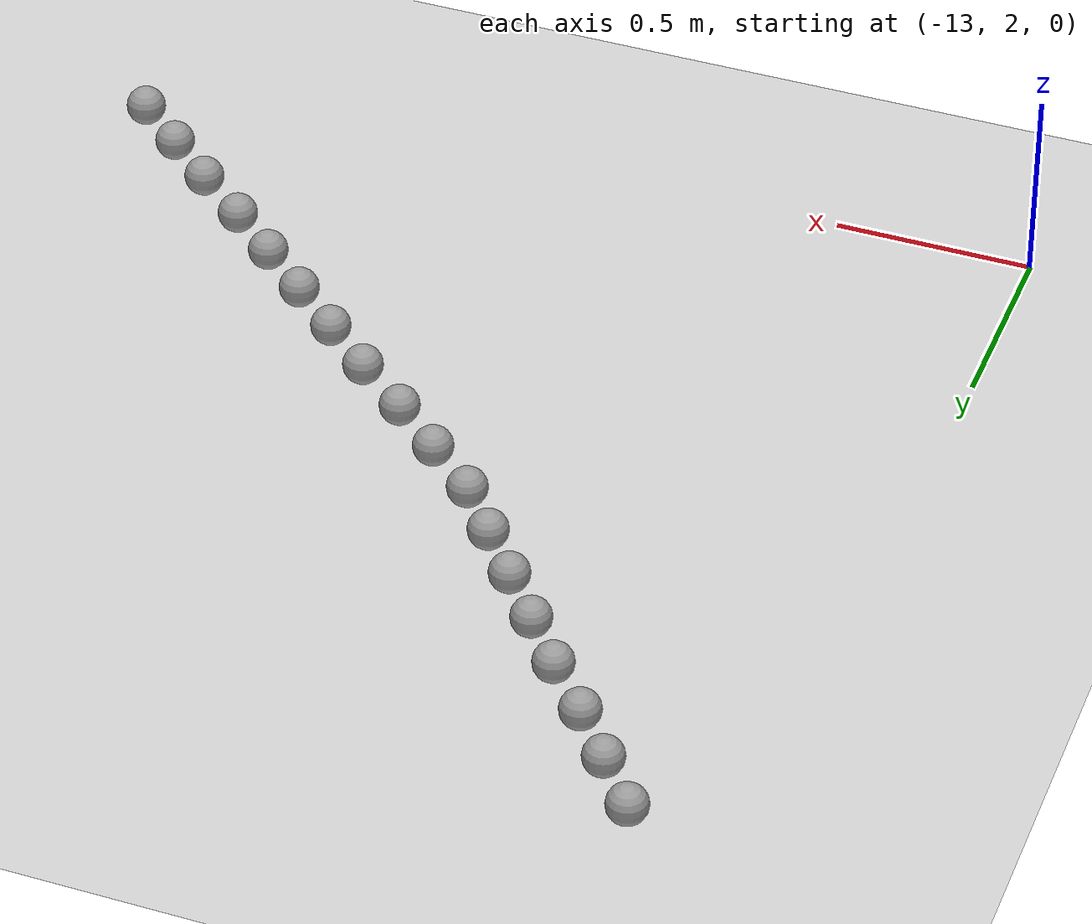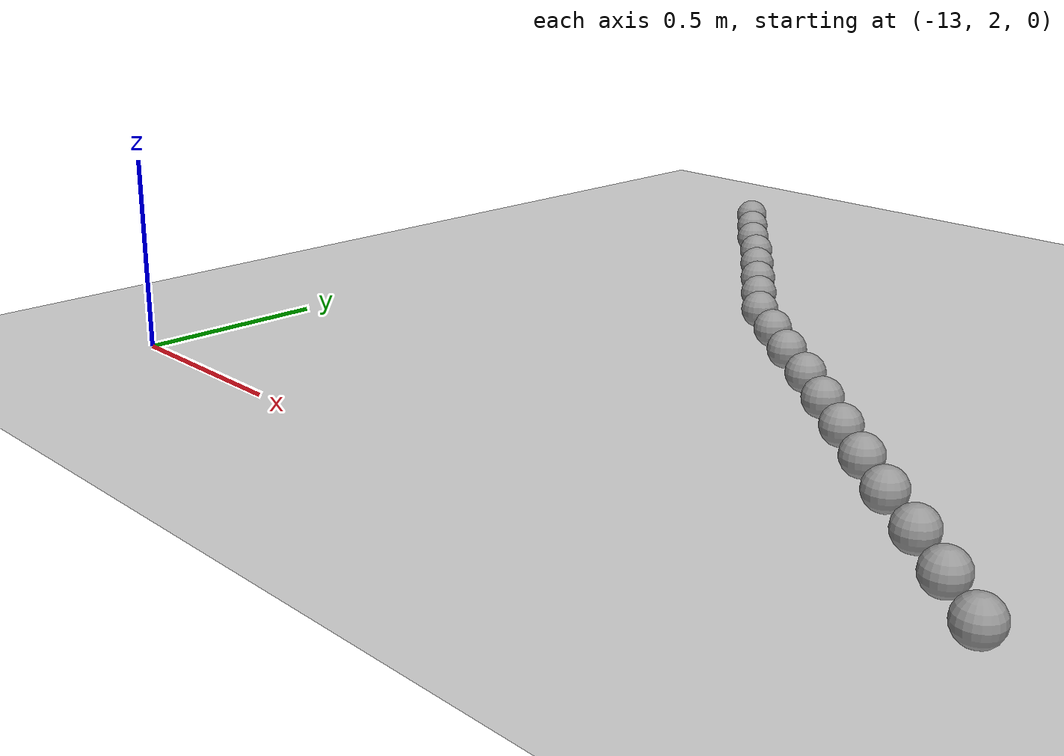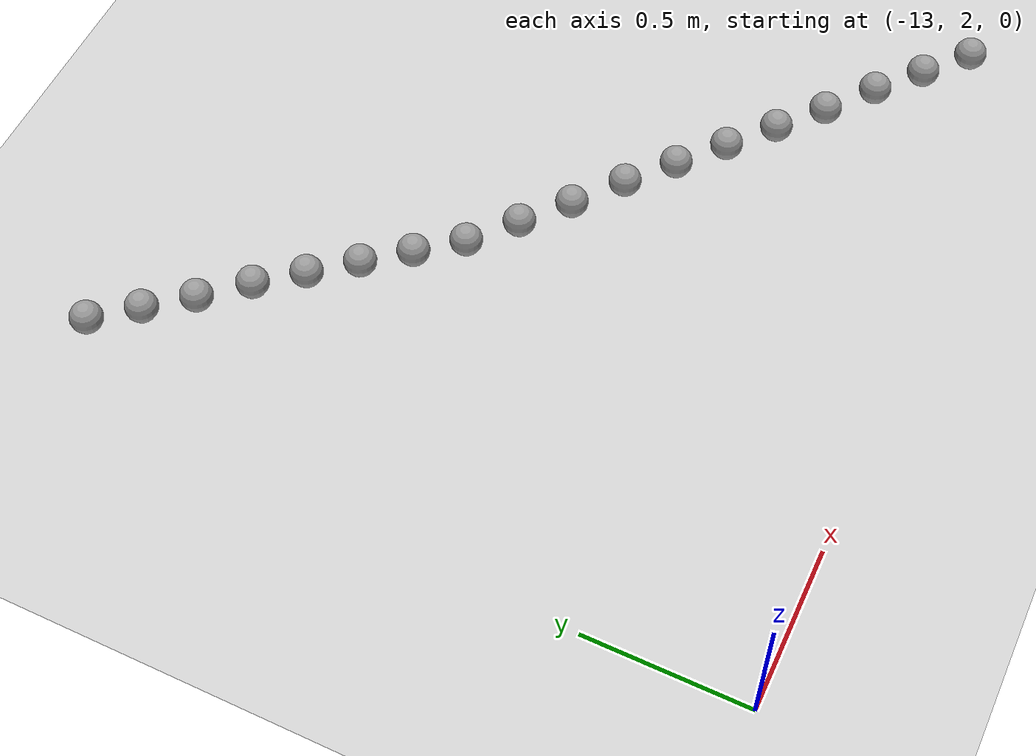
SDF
<sdf version="1.6">
 <world name="default">
  <model name="ground_plane">
   <static>1</static>
   <link name="link">
    <collision name="collision">
     <geometry><plane><normal>0 0 1</normal><size>100 100</size></plane></geometry>
     <surface><friction><ode><mu>100</mu><mu2>50</mu2></ode></friction></surface>
    </collision>
    <visual name="visual">
     <cast_shadows>0</cast_shadows>
     <geometry><plane><normal>0 0 1</normal><size>100 100</size></plane></geometry>
     <material>
      <script><uri>file://media/materials/scripts/gazebo.material</uri><name>Gazebo/Grey</name></script>
     </material>
    </visual>
   </link>
  </model>
  <model name="unit_sphere_0_203">
   <pose>-12.720000 4.195000 0.050000 0 -0 0</pose>
   <link name="link">
    <inertial>
     <mass>1</mass>
     <inertia><ixx>0.1</ixx><ixy>0</ixy><ixz>0</ixz><iyy>0.1</iyy><iyz>0</iyz><izz>0.1</izz></inertia>
    </inertial>
    <collision name="collision"><geometry><sphere><radius>0.050000</radius></sphere></geometry></collision>
    <visual name="visual">
     <geometry><sphere><radius>0.050000</radius></sphere></geometry>
     <material>
      <script><name>Gazebo/Grey</name><uri>file://media/materials/scripts/gazebo.material</uri></script>
     </material>
    </visual>
   </link>
  </model>
  <model name="unit_sphere_0_204">
   <pose>-12.620000 4.070000 0.050000 0 -0 0</pose>
   <link name="link">
    <inertial>
     <mass>1</mass>
     <inertia><ixx>0.1</ixx><ixy>0</ixy><ixz>0</ixz><iyy>0.1</iyy><iyz>0</iyz><izz>0.1</izz></inertia>
    </inertial>
    <collision name="collision"><geometry><sphere><radius>0.050000</radius></sphere></geometry></collision>
    <visual name="visual">
     <geometry><sphere><radius>0.050000</radius></sphere></geometry>
     <material>
      <script><name>Gazebo/Grey</name><uri>file://media/materials/scripts/gazebo.material</uri></script>
     </material>
    </visual>
   </link>
  </model>
  <model name="unit_sphere_0_205">
   <pose>-12.520000 3.945000 0.050000 0 -0 0</pose>
   <link name="link">
    <inertial>
     <mass>1</mass>
     <inertia><ixx>0.1</ixx><ixy>0</ixy><ixz>0</ixz><iyy>0.1</iyy><iyz>0</iyz><izz>0.1</izz></inertia>
    </inertial>
    <collision name="collision"><geometry><sphere><radius>0.050000</radius></sphere></geometry></collision>
    <visual name="visual">
     <geometry><sphere><radius>0.050000</radius></sphere></geometry>
     <material>
      <script><name>Gazebo/Grey</name><uri>file://media/materials/scripts/gazebo.material</uri></script>
     </material>
    </visual>
   </link>
  </model>
  <model name="unit_sphere_0_206">
   <pose>-12.410000 3.820000 0.050000 0 -0 0</pose>
   <link name="link">
    <inertial>
     <mass>1</mass>
     <inertia><ixx>0.1</ixx><ixy>0</ixy><ixz>0</ixz><iyy>0.1</iyy><iyz>0</iyz><izz>0.1</izz></inertia>
    </inertial>
    <collision name="collision"><geometry><sphere><radius>0.050000</radius></sphere></geometry></collision>
    <visual name="visual">
     <geometry><sphere><radius>0.050000</radius></sphere></geometry>
     <material>
      <script><name>Gazebo/Grey</name><uri>file://media/materials/scripts/gazebo.material</uri></script>
     </material>
    </visual>
   </link>
  </model>
  <model name="unit_sphere_0_207">
   <pose>-12.310000 3.695000 0.050000 0 -0 0</pose>
   <link name="link">
    <inertial>
     <mass>1</mass>
     <inertia><ixx>0.1</ixx><ixy>0</ixy><ixz>0</ixz><iyy>0.1</iyy><iyz>0</iyz><izz>0.1</izz></inertia>
    </inertial>
    <collision name="collision"><geometry><sphere><radius>0.050000</radius></sphere></geometry></collision>
    <visual name="visual">
     <geometry><sphere><radius>0.050000</radius></sphere></geometry>
     <material>
      <script><name>Gazebo/Grey</name><uri>file://media/materials/scripts/gazebo.material</uri></script>
     </material>
    </visual>
   </link>
  </model>
  <model name="unit_sphere_0_208">
   <pose>-12.210000 3.570000 0.050000 0 -0 0</pose>
   <link name="link">
    <inertial>
     <mass>1</mass>
     <inertia><ixx>0.1</ixx><ixy>0</ixy><ixz>0</ixz><iyy>0.1</iyy><iyz>0</iyz><izz>0.1</izz></inertia>
    </inertial>
    <collision name="collision"><geometry><sphere><radius>0.050000</radius></sphere></geometry></collision>
    <visual name="visual">
     <geometry><sphere><radius>0.050000</radius></sphere></geometry>
     <material>
      <script><name>Gazebo/Grey</name><uri>file://media/materials/scripts/gazebo.material</uri></script>
     </material>
    </visual>
   </link>
  </model>
  <model name="unit_sphere_0_209">
   <pose>-12.110000 3.445000 0.050000 0 -0 0</pose>
   <link name="link">
    <inertial>
     <mass>1</mass>
     <inertia><ixx>0.1</ixx><ixy>0</ixy><ixz>0</ixz><iyy>0.1</iyy><iyz>0</iyz><izz>0.1</izz></inertia>
    </inertial>
    <collision name="collision"><geometry><sphere><radius>0.050000</radius></sphere></geometry></collision>
    <visual name="visual">
     <geometry><sphere><radius>0.050000</radius></sphere></geometry>
     <material>
      <script><name>Gazebo/Grey</name><uri>file://media/materials/scripts/gazebo.material</uri></script>
     </material>
    </visual>
   </link>
  </model>
  <model name="unit_sphere_0_210">
   <pose>-12.010000 3.320000 0.050000 0 -0 0</pose>
   <link name="link">
    <inertial>
     <mass>1</mass>
     <inertia><ixx>0.1</ixx><ixy>0</ixy><ixz>0</ixz><iyy>0.1</iyy><iyz>0</iyz><izz>0.1</izz></inertia>
    </inertial>
    <collision name="collision"><geometry><sphere><radius>0.050000</radius></sphere></geometry></collision>
    <visual name="visual">
     <geometry><sphere><radius>0.050000</radius></sphere></geometry>
     <material>
      <script><name>Gazebo/Grey</name><uri>file://media/materials/scripts/gazebo.material</uri></script>
     </material>
    </visual>
   </link>
  </model>
  <model name="unit_sphere_0_211">
   <pose>-11.880000 3.207000 0.050000 0 -0 0</pose>
   <link name="link">
    <inertial>
     <mass>1</mass>
     <inertia><ixx>0.1</ixx><ixy>0</ixy><ixz>0</ixz><iyy>0.1</iyy><iyz>0</iyz><izz>0.1</izz></inertia>
    </inertial>
    <collision name="collision"><geometry><sphere><radius>0.050000</radius></sphere></geometry></collision>
    <visual name="visual">
     <geometry><sphere><radius>0.050000</radius></sphere></geometry>
     <material>
      <script><name>Gazebo/Grey</name><uri>file://media/materials/scripts/gazebo.material</uri></script>
     </material>
    </visual>
   </link>
  </model>
  <model name="unit_sphere_0_212">
   <pose>-11.750000 3.094000 0.050000 0 -0 0</pose>
   <link name="link">
    <inertial>
     <mass>1</mass>
     <inertia><ixx>0.1</ixx><ixy>0</ixy><ixz>0</ixz><iyy>0.1</iyy><iyz>0</iyz><izz>0.1</izz></inertia>
    </inertial>
    <collision name="collision"><geometry><sphere><radius>0.050000</radius></sphere></geometry></collision>
    <visual name="visual">
     <geometry><sphere><radius>0.050000</radius></sphere></geometry>
     <material>
      <script><name>Gazebo/Grey</name><uri>file://media/materials/scripts/gazebo.material</uri></script>
     </material>
    </visual>
   </link>
  </model>
  <model name="unit_sphere_0_213">
   <pose>-11.610000 2.981000 0.050000 0 -0 0</pose>
   <link name="link">
    <inertial>
     <mass>1</mass>
     <inertia><ixx>0.1</ixx><ixy>0</ixy><ixz>0</ixz><iyy>0.1</iyy><iyz>0</iyz><izz>0.1</izz></inertia>
    </inertial>
    <collision name="collision"><geometry><sphere><radius>0.050000</radius></sphere></geometry></collision>
    <visual name="visual">
     <geometry><sphere><radius>0.050000</radius></sphere></geometry>
     <material>
      <script><name>Gazebo/Grey</name><uri>file://media/materials/scripts/gazebo.material</uri></script>
     </material>
    </visual>
   </link>
  </model>
  <model name="unit_sphere_0_214">
   <pose>-11.480000 2.868000 0.050000 0 -0 0</pose>
   <link name="link">
    <inertial>
     <mass>1</mass>
     <inertia><ixx>0.1</ixx><ixy>0</ixy><ixz>0</ixz><iyy>0.1</iyy><iyz>0</iyz><izz>0.1</izz></inertia>
    </inertial>
    <collision name="collision"><geometry><sphere><radius>0.050000</radius></sphere></geometry></collision>
    <visual name="visual">
     <geometry><sphere><radius>0.050000</radius></sphere></geometry>
     <material>
      <script><name>Gazebo/Grey</name><uri>file://media/materials/scripts/gazebo.material</uri></script>
     </material>
    </visual>
   </link>
  </model>
  <model name="unit_sphere_0_215">
   <pose>-11.350000 2.755000 0.050000 0 -0 0</pose>
   <link name="link">
    <inertial>
     <mass>1</mass>
     <inertia><ixx>0.1</ixx><ixy>0</ixy><ixz>0</ixz><iyy>0.1</iyy><iyz>0</iyz><izz>0.1</izz></inertia>
    </inertial>
    <collision name="collision"><geometry><sphere><radius>0.050000</radius></sphere></geometry></collision>
    <visual name="visual">
     <geometry><sphere><radius>0.050000</radius></sphere></geometry>
     <material>
      <script><name>Gazebo/Grey</name><uri>file://media/materials/scripts/gazebo.material</uri></script>
     </material>
    </visual>
   </link>
  </model>
  <model name="unit_sphere_0_216">
   <pose>-11.220000 2.642000 0.050000 0 -0 0</pose>
   <link name="link">
    <inertial>
     <mass>1</mass>
     <inertia><ixx>0.1</ixx><ixy>0</ixy><ixz>0</ixz><iyy>0.1</iyy><iyz>0</iyz><izz>0.1</izz></inertia>
    </inertial>
    <collision name="collision"><geometry><sphere><radius>0.050000</radius></sphere></geometry></collision>
    <visual name="visual">
     <geometry><sphere><radius>0.050000</radius></sphere></geometry>
     <material>
      <script><name>Gazebo/Grey</name><uri>file://media/materials/scripts/gazebo.material</uri></script>
     </material>
    </visual>
   </link>
  </model>
  <model name="unit_sphere_0_217">
   <pose>-11.090000 2.529000 0.050000 0 -0 0</pose>
   <link name="link">
    <inertial>
     <mass>1</mass>
     <inertia><ixx>0.1</ixx><ixy>0</ixy><ixz>0</ixz><iyy>0.1</iyy><iyz>0</iyz><izz>0.1</izz></inertia>
    </inertial>
    <collision name="collision"><geometry><sphere><radius>0.050000</radius></sphere></geometry></collision>
    <visual name="visual">
     <geometry><sphere><radius>0.050000</radius></sphere></geometry>
     <material>
      <script><name>Gazebo/Grey</name><uri>file://media/materials/scripts/gazebo.material</uri></script>
     </material>
    </visual>
   </link>
  </model>
  <model name="unit_sphere_0_218">
   <pose>-10.950000 2.416000 0.050000 0 -0 0</pose>
   <link name="link">
    <inertial>
     <mass>1</mass>
     <inertia><ixx>0.1</ixx><ixy>0</ixy><ixz>0</ixz><iyy>0.1</iyy><iyz>0</iyz><izz>0.1</izz></inertia>
    </inertial>
    <collision name="collision"><geometry><sphere><radius>0.050000</radius></sphere></geometry></collision>
    <visual name="visual">
     <geometry><sphere><radius>0.050000</radius></sphere></geometry>
     <material>
      <script><name>Gazebo/Grey</name><uri>file://media/materials/scripts/gazebo.material</uri></script>
     </material>
    </visual>
   </link>
  </model>
  <model name="unit_sphere_0_219">
   <pose>-10.820000 2.303000 0.050000 0 -0 0</pose>
   <link name="link">
    <inertial>
     <mass>1</mass>
     <inertia><ixx>0.1</ixx><ixy>0</ixy><ixz>0</ixz><iyy>0.1</iyy><iyz>0</iyz><izz>0.1</izz></inertia>
    </inertial>
    <collision name="collision"><geometry><sphere><radius>0.050000</radius></sphere></geometry></collision>
    <visual name="visual">
     <geometry><sphere><radius>0.050000</radius></sphere></geometry>
     <material>
      <script><name>Gazebo/Grey</name><uri>file://media/materials/scripts/gazebo.material</uri></script>
     </material>
    </visual>
   </link>
  </model>
  <model name="unit_sphere_0_220">
   <pose>-10.690000 2.190000 0.050000 0 -0 0</pose>
   <link name="link">
    <inertial>
     <mass>1</mass>
     <inertia><ixx>0.1</ixx><ixy>0</ixy><ixz>0</ixz><iyy>0.1</iyy><iyz>0</iyz><izz>0.1</izz></inertia>
    </inertial>
    <collision name="collision"><geometry><sphere><radius>0.050000</radius></sphere></geometry></collision>
    <visual name="visual">
     <geometry><sphere><radius>0.050000</radius></sphere></geometry>
     <material>
      <script><name>Gazebo/Grey</name><uri>file://media/materials/scripts/gazebo.material</uri></script>
     </material>
    </visual>
   </link>
  </model>
 </world>
</sdf>
